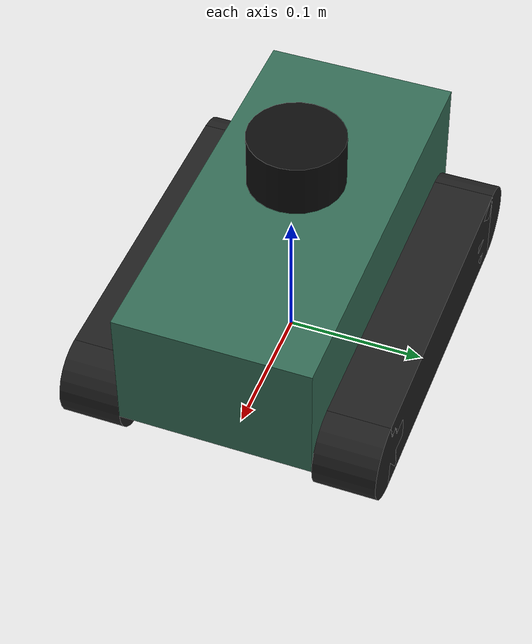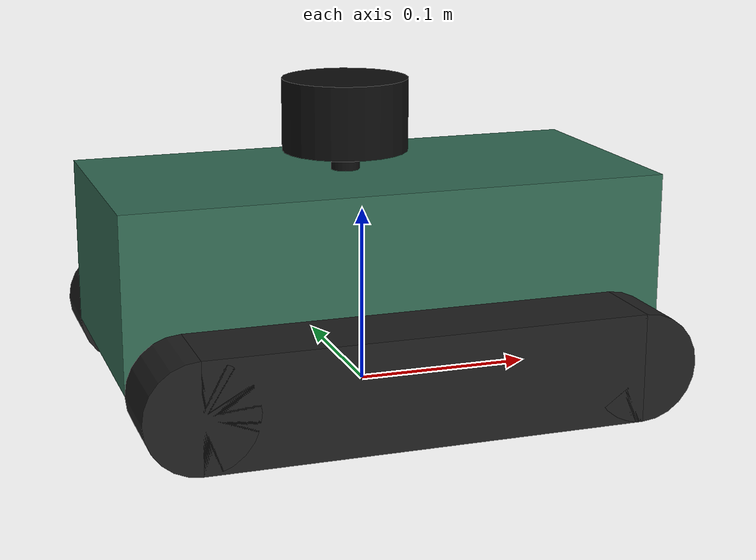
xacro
<?xml version="1.0"?>
<robot name="tracked_robot" xmlns:xacro="http://www.ros.org/wiki/xacro">
  <xacro:arg name="sim" default="false"/>
  <xacro:property name="sim" value="$(arg sim)"/>

  <!-- Tracks: sprocket radius and centre-to-centre spacing (= drive.yaml) -->
  <xacro:property name="wheel_radius" value="0.03"/>   <!-- est: measure sprocket -->
  <xacro:property name="track_width" value="0.185"/>   <!-- 0.23 overall - belt width -->
  <xacro:property name="track_belt_width" value="0.045"/>   <!-- est -->
  <xacro:property name="track_length" value="0.30"/>   <!-- overall, end to end -->
  <!-- Chassis body between the tracks -->
  <xacro:property name="body_length" value="0.30"/>
  <xacro:property name="body_width" value="0.14"/>
  <xacro:property name="body_height" value="0.094"/>
  <xacro:property name="body_clearance" value="0.03"/>   <!-- top deck at 0.124 -->
  <xacro:property name="body_mass" value="1.5"/>
  <!-- Sensor mounts, relative to base_link -->
  <xacro:property name="laser_x" value="-0.010"/>          <!-- 160 mm behind the front edge, centred (measured 2026-10-30) -->
  <xacro:property name="laser_z" value="0.155"/>         <!-- scan plane height, measured 2026-10-30 -->
  <xacro:property name="laser_yaw" value="${pi}"/>        <!-- A1 mounted facing backwards (user, 2026-10-28) -->
  <xacro:property name="mpu_yaw" value="${-pi/2}"/>       <!-- IMU chip y axis points forward (driving test, 2026-11-05); flat to 0.3 deg by spin axis -->
  <xacro:property name="camera_x" value="0.13"/>            <!-- est -->
  <xacro:property name="camera_z" value="0.07"/>         <!-- lens centres above the floor, measured 2026-10-28 -->
  <xacro:property name="camera_pitch" value="${radians(-21.7)}"/>  <!-- negative = looking up; fitted to floor features in depth, 2026-11-02 -->
  <xacro:property name="camera_baseline" value="0.0588"/>        <!-- = right.yaml Tx / fx -->

  <xacro:property name="sprocket_spacing" value="${track_length - 2 * wheel_radius}"/>

  <material name="body"><color rgba="0.20 0.42 0.33 1"/></material>
  <material name="track"><color rgba="0.12 0.12 0.12 1"/></material>
  <material name="sensor"><color rgba="0.05 0.05 0.05 1"/></material>
  <material name="board"><color rgba="0.10 0.45 0.25 1"/></material>

  <xacro:macro name="box_inertia" params="m x y z">
    <inertial>
      <mass value="${m}"/>
      <inertia ixx="${m * (y*y + z*z) / 12}" iyy="${m * (x*x + z*z) / 12}" izz="${m * (x*x + y*y) / 12}"
               ixy="0" ixz="0" iyz="0"/>
    </inertial>
  </xacro:macro>

  <!-- Inertia of a cylinder whose axis is the link's Y axis (wheels) -->
  <xacro:macro name="wheel_inertia" params="m r h">
    <inertial>
      <mass value="${m}"/>
      <inertia ixx="${m * (3*r*r + h*h) / 12}" iyy="${m * r * r / 2}" izz="${m * (3*r*r + h*h) / 12}"
               ixy="0" ixz="0" iyz="0"/>
    </inertial>
  </xacro:macro>

  <link name="base_link"/>

  <link name="chassis">
    <visual>
      <geometry><box size="${body_length} ${body_width} ${body_height}"/></geometry>
      <material name="body"/>
    </visual>
    <collision>
      <geometry><box size="${body_length} ${body_width} ${body_height}"/></geometry>
    </collision>
    <xacro:box_inertia m="${body_mass}" x="${body_length}" y="${body_width}" z="${body_height}"/>
  </link>
  <joint name="chassis_joint" type="fixed">
    <parent link="base_link"/>
    <child link="chassis"/>
    <origin xyz="0 0 ${body_clearance + body_height / 2}"/>
  </joint>

  <!-- Track belts: a stadium shape. The collision box is what the sim drives on. -->
  <xacro:macro name="track" params="side y">
    <link name="track_${side}">
      <visual>
        <geometry><box size="${sprocket_spacing} ${track_belt_width} ${2 * wheel_radius}"/></geometry>
        <material name="track"/>
      </visual>
      <visual>
        <origin xyz="${sprocket_spacing / 2} 0 0" rpy="${pi/2} 0 0"/>
        <geometry><cylinder radius="${wheel_radius}" length="${track_belt_width}"/></geometry>
        <material name="track"/>
      </visual>
      <visual>
        <origin xyz="${-sprocket_spacing / 2} 0 0" rpy="${pi/2} 0 0"/>
        <geometry><cylinder radius="${wheel_radius}" length="${track_belt_width}"/></geometry>
        <material name="track"/>
      </visual>
      <collision>
        <geometry><box size="${track_length} ${track_belt_width} ${2 * wheel_radius}"/></geometry>
      </collision>
      <xacro:box_inertia m="0.2" x="${track_length}" y="${track_belt_width}" z="${2 * wheel_radius}"/>
    </link>
    <joint name="track_${side}_joint" type="fixed">
      <parent link="base_link"/>
      <child link="track_${side}"/>
      <origin xyz="0 ${y} ${wheel_radius}"/>
    </joint>
  </xacro:macro>
  <xacro:track side="left" y="${track_width / 2}"/>
  <xacro:track side="right" y="${-track_width / 2}"/>

  <!-- RPLIDAR A1 on a short mast; the laser frame is the scan plane -->
  <link name="laser_mast">
    <visual>
      <origin xyz="0 0 ${(laser_z - 0.02 - body_clearance - body_height) / 2}"/>
      <geometry><cylinder radius="0.008" length="${laser_z - 0.02 - body_clearance - body_height}"/></geometry>
      <material name="sensor"/>
    </visual>
  </link>
  <joint name="laser_mast_joint" type="fixed">
    <parent link="base_link"/>
    <child link="laser_mast"/>
    <origin xyz="${laser_x} 0 ${body_clearance + body_height}"/>
  </joint>
  <link name="laser">
    <visual>
      <geometry><cylinder radius="0.035" length="0.04"/></geometry>
      <material name="sensor"/>
    </visual>
    <collision>
      <geometry><cylinder radius="0.035" length="0.04"/></geometry>
    </collision>
    <xacro:box_inertia m="0.17" x="0.07" y="0.07" z="0.04"/>
  </link>
  <joint name="laser_joint" type="fixed">
    <parent link="base_link"/>
    <child link="laser"/>
    <origin xyz="${laser_x} 0 ${laser_z}" rpy="0 0 ${laser_yaw}"/>
  </joint>

  <!-- IMU on the sensor Pico (pico_io.py, mpu_imu.py). Position not measured: only its rotation matters for rates. -->
  <link name="mpu_imu"/>
  <joint name="mpu_imu_joint" type="fixed">
    <parent link="base_link"/>
    <child link="mpu_imu"/>
    <origin xyz="0 0 0" rpy="0 0 ${mpu_yaw}"/>
  </joint>

  <!-- Stereo pair. stereo_camera is the frame the Argus nodes use as camera link. -->
  <link name="stereo_camera">
    <visual>
      <geometry><box size="0.015 ${camera_baseline + 0.03} 0.025"/></geometry>
      <material name="board"/>
    </visual>
    <xacro:box_inertia m="0.05" x="0.015" y="${camera_baseline + 0.03}" z="0.025"/>
  </link>
  <joint name="stereo_camera_joint" type="fixed">
    <parent link="base_link"/>
    <child link="stereo_camera"/>
    <origin xyz="${camera_x} 0 ${camera_z}" rpy="0 ${camera_pitch} 0"/>
  </joint>

  <xacro:macro name="camera_eye" params="side y">
    <link name="stereo_camera_${side}">
      <visual>
        <origin xyz="0.01 0 0" rpy="0 ${pi/2} 0"/>
        <geometry><cylinder radius="0.006" length="0.008"/></geometry>
        <material name="sensor"/>
      </visual>
    </link>
    <joint name="stereo_camera_${side}_joint" type="fixed">
      <parent link="stereo_camera"/>
      <child link="stereo_camera_${side}"/>
      <origin xyz="0 ${y} 0"/>
    </joint>
    <!-- Optical frame: z forward, x right, y down (what the image headers use) -->
    <link name="stereo_camera_${side}_optical"/>
    <joint name="stereo_camera_${side}_optical_joint" type="fixed">
      <parent link="stereo_camera_${side}"/>
      <child link="stereo_camera_${side}_optical"/>
      <origin rpy="${-pi/2} 0 ${-pi/2}"/>
    </joint>
  </xacro:macro>
  <xacro:camera_eye side="left" y="${camera_baseline / 2}"/>
  <xacro:camera_eye side="right" y="${-camera_baseline / 2}"/>

  <xacro:if value="${sim}">
    <xacro:include filename="robot.gazebo.xacro"/>
  </xacro:if>
</robot>
